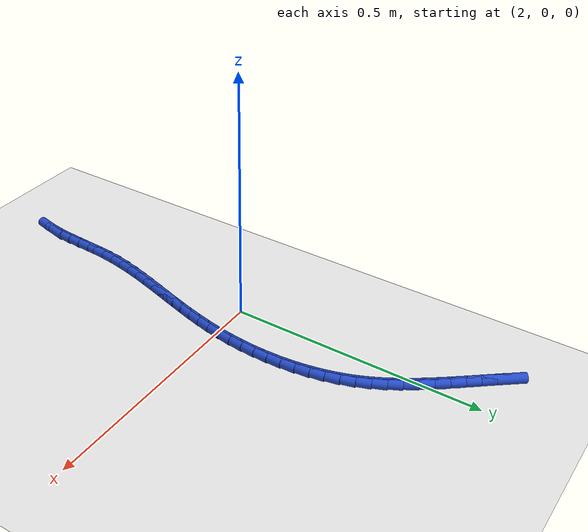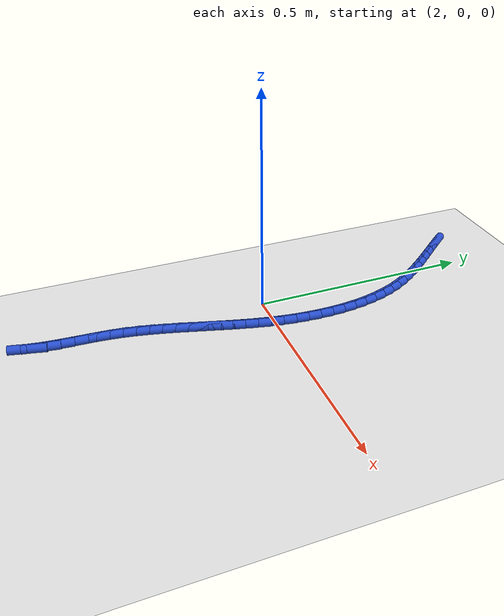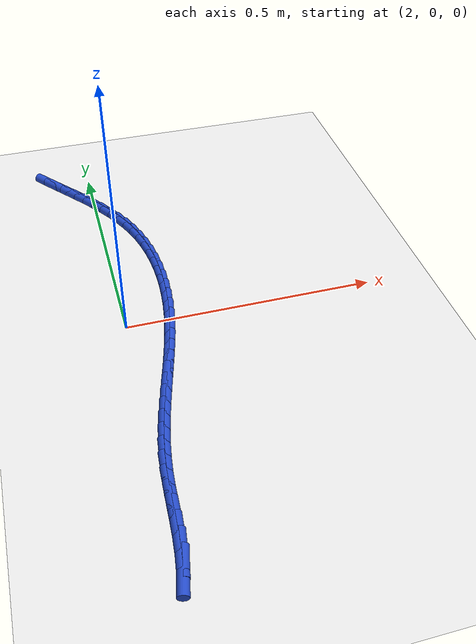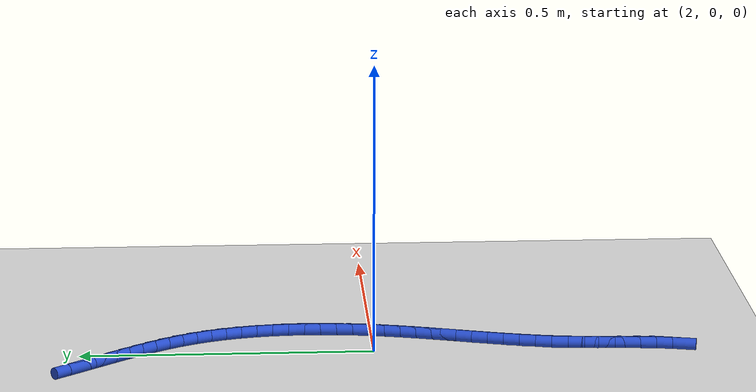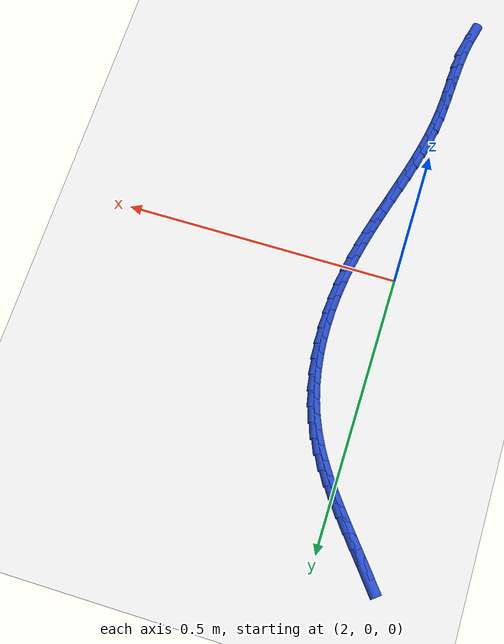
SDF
<sdf version="1.6">
 <world name="default">
  <model name="ground_plane">
   <static>1</static>
   <link name="link">
    <collision name="collision">
     <geometry><plane><normal>0 0 1</normal><size>100 100</size></plane></geometry>
     <surface><friction><ode><mu>100</mu><mu2>50</mu2></ode></friction></surface>
    </collision>
    <visual name="visual">
     <cast_shadows>0</cast_shadows>
     <geometry><plane><normal>0 0 1</normal><size>100 100</size></plane></geometry>
     <material>
      <script><uri>file://media/materials/scripts/gazebo.material</uri><name>Gazebo/WhiteGlow</name></script>
     </material>
    </visual>
   </link>
  </model>
  <model name="line">
   <link name="link_100">
    <pose>1.9127993201695321 0.5047143318786717 0.01 0 1.57 -0.8911269112037871</pose>
    <collision name="collision">
     <geometry><cylinder><radius>0.01</radius><length>0.08</length></cylinder></geometry>
    </collision>
    <visual name="visual">
     <material>
      <script><name>Gazebo/Blue</name><uri>file://media/materials/scripts/gazebo.material</uri></script>
     </material>
     <geometry><cylinder><radius>0.01</radius><length>0.08</length></cylinder></geometry>
    </visual>
   </link>
   <link name="link_101">
    <pose>1.9303143074345932 0.4830404456892115 0.01 0 1.57 -0.884762328135932</pose>
    <collision name="collision">
     <geometry><cylinder><radius>0.01</radius><length>0.08</length></cylinder></geometry>
    </collision>
    <visual name="visual">
     <material>
      <script><name>Gazebo/Blue</name><uri>file://media/materials/scripts/gazebo.material</uri></script>
     </material>
     <geometry><cylinder><radius>0.01</radius><length>0.08</length></cylinder></geometry>
    </visual>
   </link>
   <link name="link_102">
    <pose>1.947990494550314 0.46144963423226376 0.01 0 1.57 -0.8875484873435319</pose>
    <collision name="collision">
     <geometry><cylinder><radius>0.01</radius><length>0.08</length></cylinder></geometry>
    </collision>
    <visual name="visual">
     <material>
      <script><name>Gazebo/Blue</name><uri>file://media/materials/scripts/gazebo.material</uri></script>
     </material>
     <geometry><cylinder><radius>0.01</radius><length>0.08</length></cylinder></geometry>
    </visual>
   </link>
   <link name="link_103">
    <pose>1.9655914872995524 0.43982804805477455 0.01 0 1.57 -0.8995264937181116</pose>
    <collision name="collision">
     <geometry><cylinder><radius>0.01</radius><length>0.08</length></cylinder></geometry>
    </collision>
    <visual name="visual">
     <material>
      <script><name>Gazebo/Blue</name><uri>file://media/materials/scripts/gazebo.material</uri></script>
     </material>
     <geometry><cylinder><radius>0.01</radius><length>0.08</length></cylinder></geometry>
    </visual>
   </link>
   <link name="link_104">
    <pose>1.982880891465168 0.4180618377036901 0.01 0 1.57 -0.9208492822064647</pose>
    <collision name="collision">
     <geometry><cylinder><radius>0.01</radius><length>0.08</length></cylinder></geometry>
    </collision>
    <visual name="visual">
     <material>
      <script><name>Gazebo/Blue</name><uri>file://media/materials/scripts/gazebo.material</uri></script>
     </material>
     <geometry><cylinder><radius>0.01</radius><length>0.08</length></cylinder></geometry>
    </visual>
   </link>
   <link name="link_105">
    <pose>1.9996223128300206 0.3960371537259576 0.01 0 1.57 -0.9517546509273949</pose>
    <collision name="collision">
     <geometry><cylinder><radius>0.01</radius><length>0.08</length></cylinder></geometry>
    </collision>
    <visual name="visual">
     <material>
      <script><name>Gazebo/Blue</name><uri>file://media/materials/scripts/gazebo.material</uri></script>
     </material>
     <geometry><cylinder><radius>0.01</radius><length>0.08</length></cylinder></geometry>
    </visual>
   </link>
   <link name="link_106">
    <pose>2.015579357176968 0.37364014666852324 0.01 0 1.57 -0.9925124548067706</pose>
    <collision name="collision">
     <geometry><cylinder><radius>0.01</radius><length>0.08</length></cylinder></geometry>
    </collision>
    <visual name="visual">
     <material>
      <script><name>Gazebo/Blue</name><uri>file://media/materials/scripts/gazebo.material</uri></script>
     </material>
     <geometry><cylinder><radius>0.01</radius><length>0.08</length></cylinder></geometry>
    </visual>
   </link>
   <link name="link_107">
    <pose>2.0305156302888716 0.35075696707833376 0.01 0 1.57 -1.0433393270357874</pose>
    <collision name="collision">
     <geometry><cylinder><radius>0.01</radius><length>0.08</length></cylinder></geometry>
    </collision>
    <visual name="visual">
     <material>
      <script><name>Gazebo/Blue</name><uri>file://media/materials/scripts/gazebo.material</uri></script>
     </material>
     <geometry><cylinder><radius>0.01</radius><length>0.08</length></cylinder></geometry>
    </visual>
   </link>
   <link name="link_108">
    <pose>2.04419473794859 0.32727376550233517 0.01 0 1.57 -1.1042760970246959</pose>
    <collision name="collision">
     <geometry><cylinder><radius>0.01</radius><length>0.08</length></cylinder></geometry>
    </collision>
    <visual name="visual">
     <material>
      <script><name>Gazebo/Blue</name><uri>file://media/materials/scripts/gazebo.material</uri></script>
     </material>
     <geometry><cylinder><radius>0.01</radius><length>0.08</length></cylinder></geometry>
    </visual>
   </link>
   <link name="link_109">
    <pose>2.0563802859389813 0.30307669248747465 0.01 0 1.57 -1.1745984188050587</pose>
    <collision name="collision">
     <geometry><cylinder><radius>0.01</radius><length>0.08</length></cylinder></geometry>
    </collision>
    <visual name="visual">
     <material>
      <script><name>Gazebo/Blue</name><uri>file://media/materials/scripts/gazebo.material</uri></script>
     </material>
     <geometry><cylinder><radius>0.01</radius><length>0.08</length></cylinder></geometry>
    </visual>
   </link>
   <link name="link_110">
    <pose>2.0668455844285476 0.27805916511225565 0.01 0 1.57 -1.2464943645264446</pose>
    <collision name="collision">
     <geometry><cylinder><radius>0.01</radius><length>0.08</length></cylinder></geometry>
    </collision>
    <visual name="visual">
     <material>
      <script><name>Gazebo/Blue</name><uri>file://media/materials/scripts/gazebo.material</uri></script>
     </material>
     <geometry><cylinder><radius>0.01</radius><length>0.08</length></cylinder></geometry>
    </visual>
   </link>
   <link name="link_111">
    <pose>2.075526473464767 0.2522363009458885 0.01 0 1.57 -1.3138248428905526</pose>
    <collision name="collision">
     <geometry><cylinder><radius>0.01</radius><length>0.08</length></cylinder></geometry>
    </collision>
    <visual name="visual">
     <material>
      <script><name>Gazebo/Blue</name><uri>file://media/materials/scripts/gazebo.material</uri></script>
     </material>
     <geometry><cylinder><radius>0.01</radius><length>0.08</length></cylinder></geometry>
    </visual>
   </link>
   <link name="link_112">
    <pose>2.082493406678267 0.22572401464934205 0.01 0 1.57 -1.3765647534082033</pose>
    <collision name="collision">
     <geometry><cylinder><radius>0.01</radius><length>0.08</length></cylinder></geometry>
    </collision>
    <visual name="visual">
     <material>
      <script><name>Gazebo/Blue</name><uri>file://media/materials/scripts/gazebo.material</uri></script>
     </material>
     <geometry><cylinder><radius>0.01</radius><length>0.08</length></cylinder></geometry>
    </visual>
   </link>
   <link name="link_113">
    <pose>2.0878208965937883 0.19864126013648187 0.01 0 1.57 -1.4349874410340602</pose>
    <collision name="collision">
     <geometry><cylinder><radius>0.01</radius><length>0.08</length></cylinder></geometry>
    </collision>
    <visual name="visual">
     <material>
      <script><name>Gazebo/Blue</name><uri>file://media/materials/scripts/gazebo.material</uri></script>
     </material>
     <geometry><cylinder><radius>0.01</radius><length>0.08</length></cylinder></geometry>
    </visual>
   </link>
   <link name="link_114">
    <pose>2.09158345573607 0.17110699132117219 0.01 0 1.57 -1.48944061346914</pose>
    <collision name="collision">
     <geometry><cylinder><radius>0.01</radius><length>0.08</length></cylinder></geometry>
    </collision>
    <visual name="visual">
     <material>
      <script><name>Gazebo/Blue</name><uri>file://media/materials/scripts/gazebo.material</uri></script>
     </material>
     <geometry><cylinder><radius>0.01</radius><length>0.08</length></cylinder></geometry>
    </visual>
   </link>
   <link name="link_115">
    <pose>2.093855596629854 0.14324016211727778 0.01 0 1.57 -1.5403135394647396</pose>
    <collision name="collision">
     <geometry><cylinder><radius>0.01</radius><length>0.08</length></cylinder></geometry>
    </collision>
    <visual name="visual">
     <material>
      <script><name>Gazebo/Blue</name><uri>file://media/materials/scripts/gazebo.material</uri></script>
     </material>
     <geometry><cylinder><radius>0.01</radius><length>0.08</length></cylinder></geometry>
    </visual>
   </link>
   <link name="link_116">
    <pose>2.094711831799879 0.11515972643866397 0.01 0 1.57 1.5535786314188291</pose>
    <collision name="collision">
     <geometry><cylinder><radius>0.01</radius><length>0.08</length></cylinder></geometry>
    </collision>
    <visual name="visual">
     <material>
      <script><name>Gazebo/Blue</name><uri>file://media/materials/scripts/gazebo.material</uri></script>
     </material>
     <geometry><cylinder><radius>0.01</radius><length>0.08</length></cylinder></geometry>
    </visual>
   </link>
   <link name="link_117">
    <pose>2.0942266737708874 0.08698463819919547 0.01 0 1.57 1.5086388544266467</pose>
    <collision name="collision">
     <geometry><cylinder><radius>0.01</radius><length>0.08</length></cylinder></geometry>
    </collision>
    <visual name="visual">
     <material>
      <script><name>Gazebo/Blue</name><uri>file://media/materials/scripts/gazebo.material</uri></script>
     </material>
     <geometry><cylinder><radius>0.01</radius><length>0.08</length></cylinder></geometry>
    </visual>
   </link>
   <link name="link_118">
    <pose>2.0924746350676173 0.05883385131273692 0.01 0 1.57 1.4660519694850067</pose>
    <collision name="collision">
     <geometry><cylinder><radius>0.01</radius><length>0.08</length></cylinder></geometry>
    </collision>
    <visual name="visual">
     <material>
      <script><name>Gazebo/Blue</name><uri>file://media/materials/scripts/gazebo.material</uri></script>
     </material>
     <geometry><cylinder><radius>0.01</radius><length>0.08</length></cylinder></geometry>
    </visual>
   </link>
   <link name="link_119">
    <pose>2.08953022821481 0.03082631969315283 0.01 0 1.57 1.4254167536006135</pose>
    <collision name="collision">
     <geometry><cylinder><radius>0.01</radius><length>0.08</length></cylinder></geometry>
    </collision>
    <visual name="visual">
     <material>
      <script><name>Gazebo/Blue</name><uri>file://media/materials/scripts/gazebo.material</uri></script>
     </material>
     <geometry><cylinder><radius>0.01</radius><length>0.08</length></cylinder></geometry>
    </visual>
   </link>
   <link name="link_120">
    <pose>2.0854679657372066 0.0030809972543088607 0.01 0 1.57 1.3871159544977552</pose>
    <collision name="collision">
     <geometry><cylinder><radius>0.01</radius><length>0.08</length></cylinder></geometry>
    </collision>
    <visual name="visual">
     <material>
      <script><name>Gazebo/Blue</name><uri>file://media/materials/scripts/gazebo.material</uri></script>
     </material>
     <geometry><cylinder><radius>0.01</radius><length>0.08</length></cylinder></geometry>
    </visual>
   </link>
   <link name="link_121">
    <pose>2.0803792175047433 -0.024311097818836846 0.01 0 1.57 1.3543353837245156</pose>
    <collision name="collision">
     <geometry><cylinder><radius>0.01</radius><length>0.08</length></cylinder></geometry>
    </collision>
    <visual name="visual">
     <material>
      <script><name>Gazebo/Blue</name><uri>file://media/materials/scripts/gazebo.material</uri></script>
     </material>
     <geometry><cylinder><radius>0.01</radius><length>0.08</length></cylinder></geometry>
    </visual>
   </link>
   <link name="link_122">
    <pose>2.0744270772377527 -0.051377806984841956 0.01 0 1.57 1.3281658061503585</pose>
    <collision name="collision">
     <geometry><cylinder><radius>0.01</radius><length>0.08</length></cylinder></geometry>
    </collision>
    <visual name="visual">
     <material>
      <script><name>Gazebo/Blue</name><uri>file://media/materials/scripts/gazebo.material</uri></script>
     </material>
     <geometry><cylinder><radius>0.01</radius><length>0.08</length></cylinder></geometry>
    </visual>
   </link>
   <link name="link_123">
    <pose>2.0677937107415585 -0.07817857766333215 0.01 0 1.57 1.308768527974652</pose>
    <collision name="collision">
     <geometry><cylinder><radius>0.01</radius><length>0.08</length></cylinder></geometry>
    </collision>
    <visual name="visual">
     <material>
      <script><name>Gazebo/Blue</name><uri>file://media/materials/scripts/gazebo.material</uri></script>
     </material>
     <geometry><cylinder><radius>0.01</radius><length>0.08</length></cylinder></geometry>
    </visual>
   </link>
   <link name="link_124">
    <pose>2.0606612839777796 -0.10477285753294265 0.01 0 1.57 1.2962422315116475</pose>
    <collision name="collision">
     <geometry><cylinder><radius>0.01</radius><length>0.08</length></cylinder></geometry>
    </collision>
    <visual name="visual">
     <material>
      <script><name>Gazebo/Blue</name><uri>file://media/materials/scripts/gazebo.material</uri></script>
     </material>
     <geometry><cylinder><radius>0.01</radius><length>0.08</length></cylinder></geometry>
    </visual>
   </link>
   <link name="link_125">
    <pose>2.0532119629080348 -0.13122009427230935 0.01 0 1.57 1.2906484477610816</pose>
    <collision name="collision">
     <geometry><cylinder><radius>0.01</radius><length>0.08</length></cylinder></geometry>
    </collision>
    <visual name="visual">
     <material>
      <script><name>Gazebo/Blue</name><uri>file://media/materials/scripts/gazebo.material</uri></script>
     </material>
     <geometry><cylinder><radius>0.01</radius><length>0.08</length></cylinder></geometry>
    </visual>
   </link>
   <link name="link_126">
    <pose>2.0456279134939437 -0.15757973556006613 0.01 0 1.57 1.2920287716046819</pose>
    <collision name="collision">
     <geometry><cylinder><radius>0.01</radius><length>0.08</length></cylinder></geometry>
    </collision>
    <visual name="visual">
     <material>
      <script><name>Gazebo/Blue</name><uri>file://media/materials/scripts/gazebo.material</uri></script>
     </material>
     <geometry><cylinder><radius>0.01</radius><length>0.08</length></cylinder></geometry>
    </visual>
   </link>
   <link name="link_127">
    <pose>2.0380913016971243 -0.18391122907484886 0.01 0 1.57 1.300412651331196</pose>
    <collision name="collision">
     <geometry><cylinder><radius>0.01</radius><length>0.08</length></cylinder></geometry>
    </collision>
    <visual name="visual">
     <material>
      <script><name>Gazebo/Blue</name><uri>file://media/materials/scripts/gazebo.material</uri></script>
     </material>
     <geometry><cylinder><radius>0.01</radius><length>0.08</length></cylinder></geometry>
    </visual>
   </link>
   <link name="link_128">
    <pose>2.030784293479195 -0.21027402249529276 0.01 0 1.57 1.3158151609624247</pose>
    <collision name="collision">
     <geometry><cylinder><radius>0.01</radius><length>0.08</length></cylinder></geometry>
    </collision>
    <visual name="visual">
     <material>
      <script><name>Gazebo/Blue</name><uri>file://media/materials/scripts/gazebo.material</uri></script>
     </material>
     <geometry><cylinder><radius>0.01</radius><length>0.08</length></cylinder></geometry>
    </visual>
   </link>
   <link name="link_129">
    <pose>2.023889054801775 -0.23672756350003304 0.01 0 1.57 1.338224497904502</pose>
    <collision name="collision">
     <geometry><cylinder><radius>0.01</radius><length>0.08</length></cylinder></geometry>
    </collision>
    <visual name="visual">
     <material>
      <script><name>Gazebo/Blue</name><uri>file://media/materials/scripts/gazebo.material</uri></script>
     </material>
     <geometry><cylinder><radius>0.01</radius><length>0.08</length></cylinder></geometry>
    </visual>
   </link>
   <link name="link_130">
    <pose>2.0175877516264844 -0.26333129976770486 0.01 0 1.57 1.367579376036102</pose>
    <collision name="collision">
     <geometry><cylinder><radius>0.01</radius><length>0.08</length></cylinder></geometry>
    </collision>
    <visual name="visual">
     <material>
      <script><name>Gazebo/Blue</name><uri>file://media/materials/scripts/gazebo.material</uri></script>
     </material>
     <geometry><cylinder><radius>0.01</radius><length>0.08</length></cylinder></geometry>
    </visual>
   </link>
   <link name="link_131">
    <pose>2.0120625499149396 -0.2901446789769435 0.01 0 1.57 1.4037373647507867</pose>
    <collision name="collision">
     <geometry><cylinder><radius>0.01</radius><length>0.08</length></cylinder></geometry>
    </collision>
    <visual name="visual">
     <material>
      <script><name>Gazebo/Blue</name><uri>file://media/materials/scripts/gazebo.material</uri></script>
     </material>
     <geometry><cylinder><radius>0.01</radius><length>0.08</length></cylinder></geometry>
    </visual>
   </link>
   <link name="link_132">
    <pose>2.0074956156287613 -0.31722714880638503 0.01 0 1.57 1.4464294632264085</pose>
    <collision name="collision">
     <geometry><cylinder><radius>0.01</radius><length>0.08</length></cylinder></geometry>
    </collision>
    <visual name="visual">
     <material>
      <script><name>Gazebo/Blue</name><uri>file://media/materials/scripts/gazebo.material</uri></script>
     </material>
     <geometry><cylinder><radius>0.01</radius><length>0.08</length></cylinder></geometry>
    </visual>
   </link>
   <link name="link_133">
    <pose>2.004068917424613 -0.3446380910394656 0.01 0 1.57 1.4891546840210927</pose>
    <collision name="collision">
     <geometry><cylinder><radius>0.01</radius><length>0.08</length></cylinder></geometry>
    </collision>
    <visual name="visual">
     <material>
      <script><name>Gazebo/Blue</name><uri>file://media/materials/scripts/gazebo.material</uri></script>
     </material>
     <geometry><cylinder><radius>0.01</radius><length>0.08</length></cylinder></geometry>
    </visual>
   </link>
   <link name="link_134">
    <pose>2.001798846852809 -0.37238158861459847 0.01 0 1.57 1.514868945157981</pose>
    <collision name="collision">
     <geometry><cylinder><radius>0.01</radius><length>0.08</length></cylinder></geometry>
    </collision>
    <visual name="visual">
     <material>
      <script><name>Gazebo/Blue</name><uri>file://media/materials/scripts/gazebo.material</uri></script>
     </material>
     <geometry><cylinder><radius>0.01</radius><length>0.08</length></cylinder></geometry>
    </visual>
   </link>
   <link name="link_135">
    <pose>2.0002354781065286 -0.40030598548046903 0.01 0 1.57 1.5211319635041352</pose>
    <collision name="collision">
     <geometry><cylinder><radius>0.01</radius><length>0.08</length></cylinder></geometry>
    </collision>
    <visual name="visual">
     <material>
      <script><name>Gazebo/Blue</name><uri>file://media/materials/scripts/gazebo.material</uri></script>
     </material>
     <geometry><cylinder><radius>0.01</radius><length>0.08</length></cylinder></geometry>
    </visual>
   </link>
   <link name="link_136">
    <pose>1.9988473886811262 -0.4282324076124424 0.01 0 1.57 1.5080227151505021</pose>
    <collision name="collision">
     <geometry><cylinder><radius>0.01</radius><length>0.08</length></cylinder></geometry>
    </collision>
    <visual name="visual">
     <material>
      <script><name>Gazebo/Blue</name><uri>file://media/materials/scripts/gazebo.material</uri></script>
     </material>
     <geometry><cylinder><radius>0.01</radius><length>0.08</length></cylinder></geometry>
    </visual>
   </link>
   <link name="link_137">
    <pose>1.9971031560719572 -0.4559819809858842 0.01 0 1.57 1.4750176876976764</pose>
    <collision name="collision">
     <geometry><cylinder><radius>0.01</radius><length>0.08</length></cylinder></geometry>
    </collision>
    <visual name="visual">
     <material>
      <script><name>Gazebo/Blue</name><uri>file://media/materials/scripts/gazebo.material</uri></script>
     </material>
     <geometry><cylinder><radius>0.01</radius><length>0.08</length></cylinder></geometry>
    </visual>
   </link>
   <link name="link_138">
    <pose>1.9944713577743758 -0.48337583157615926 0.01 0 1.57 1.4211091126156072</pose>
    <collision name="collision">
     <geometry><cylinder><radius>0.01</radius><length>0.08</length></cylinder></geometry>
    </collision>
    <visual name="visual">
     <material>
      <script><name>Gazebo/Blue</name><uri>file://media/materials/scripts/gazebo.material</uri></script>
     </material>
     <geometry><cylinder><radius>0.01</radius><length>0.08</length></cylinder></geometry>
    </visual>
   </link>
   <link name="link_139">
    <pose>1.990420571283737 -0.5102350853586329 0.01 0 1.57 1.3451759829491574</pose>
    <collision name="collision">
     <geometry><cylinder><radius>0.01</radius><length>0.08</length></cylinder></geometry>
    </collision>
    <visual name="visual">
     <material>
      <script><name>Gazebo/Blue</name><uri>file://media/materials/scripts/gazebo.material</uri></script>
     </material>
     <geometry><cylinder><radius>0.01</radius><length>0.08</length></cylinder></geometry>
    </visual>
   </link>
  </model>
 </world>
</sdf>
